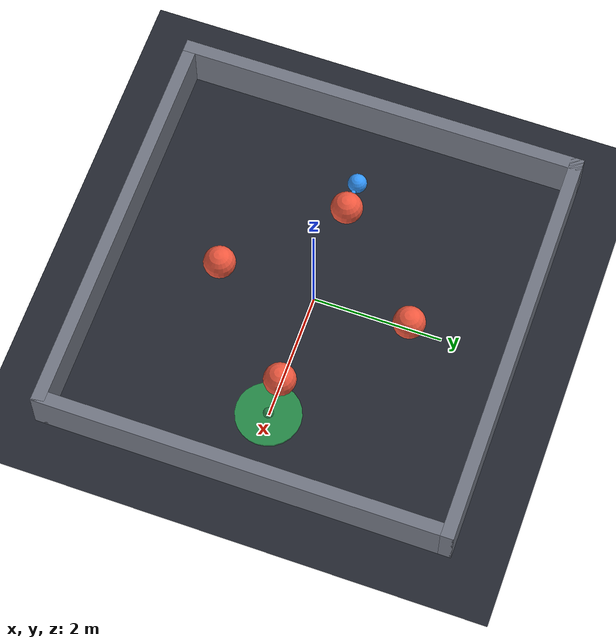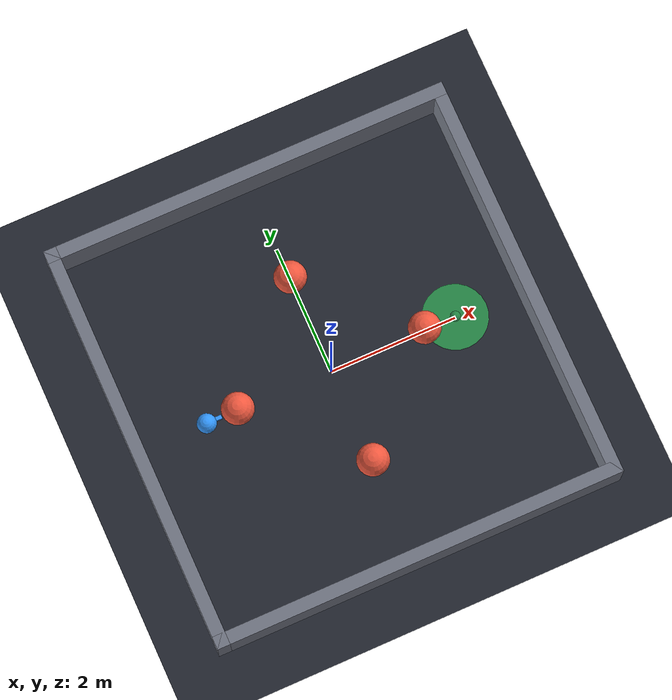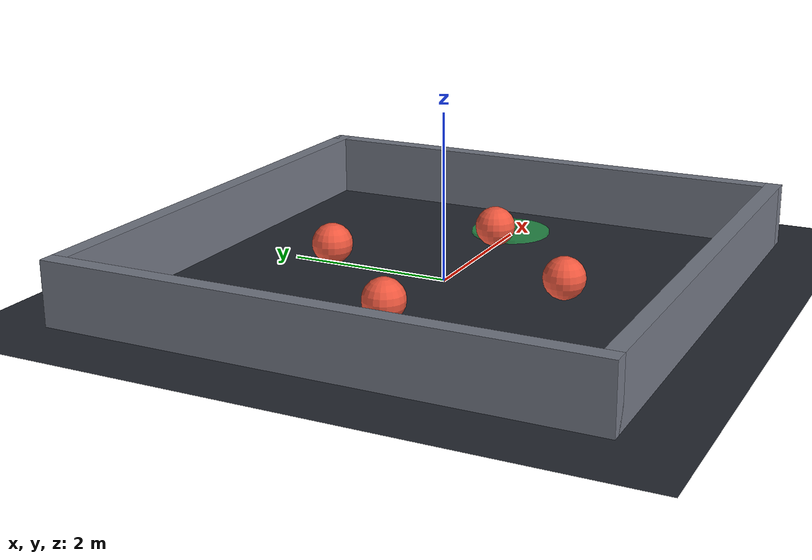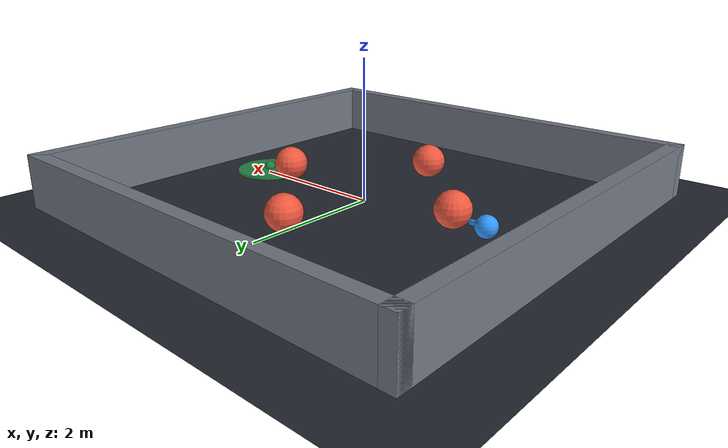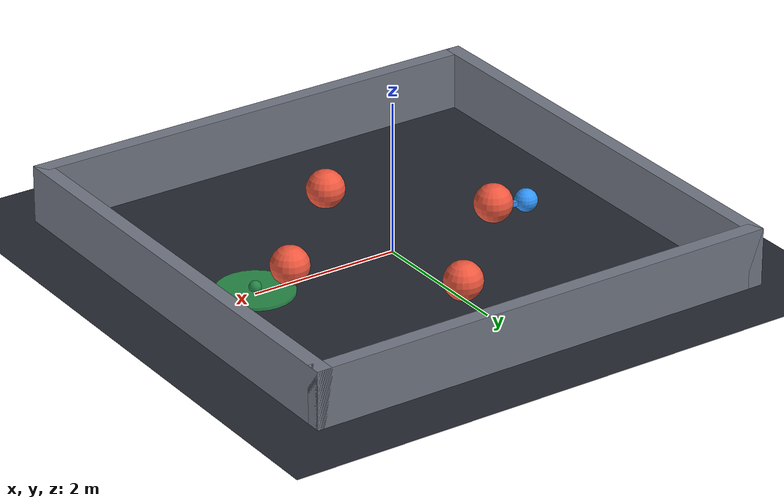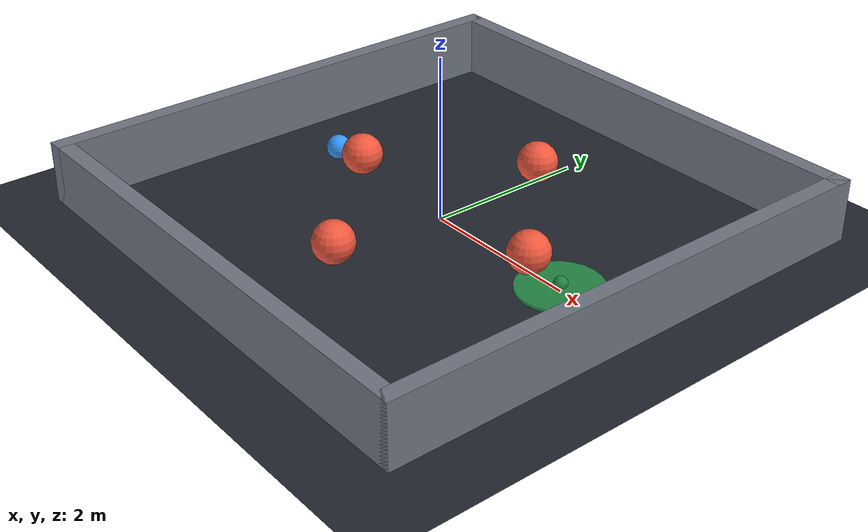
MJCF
<?xml version="1.0" encoding="utf-8"?>
<mujoco model="praxis_nav">
  <compiler angle="radian" coordinate="local" inertiafromgeom="true"/>

  <!-- sim_dt is also set from config in nav_env via mjx model timestep; this is
       the authoring default. n_substeps * timestep = ctrl_dt (~0.05). -->
  <option timestep="0.01" iterations="4" ls_iterations="6" integrator="Euler">
    <flag eulerdamp="disable"/>
  </option>

  <default>
    <geom solref="0.01 1" solimp="0.9 0.95 0.001" condim="3"/>
    <!-- agent slides: light, low friction floor handled by floor geom -->
  </default>

  <asset>
    <texture name="grid" type="2d" builtin="checker" rgb1="0.18 0.20 0.24"
             rgb2="0.10 0.11 0.14" width="300" height="300"/>
    <material name="grid_mat" texture="grid" texrepeat="6 6" reflectance="0.05"/>
    <material name="agent_mat" rgba="0.20 0.60 1.00 1"/>
    <material name="obstacle_mat" rgba="0.95 0.35 0.25 1"/>
    <material name="wall_mat" rgba="0.45 0.47 0.52 1"/>
    <material name="goal_mat" rgba="0.20 0.90 0.40 0.55"/>
  </asset>

  <worldbody>
    <light name="overhead" pos="0 0 6" dir="0 0 -1" diffuse="0.8 0.8 0.8"
           specular="0.1 0.1 0.1" castshadow="false"/>

    <!-- Floor plane (static). Sized a bit larger than the arena. -->
    <geom name="floor" type="plane" size="4 4 0.1" pos="0 0 0"
          material="grid_mat" condim="3" friction="1 0.005 0.0001"/>

    <geom name="wall_px" type="box" size="0.1 3.2 0.5" pos="3.1 0 0.25"
          material="wall_mat"/>
    <geom name="wall_nx" type="box" size="0.1 3.2 0.5" pos="-3.1 0 0.25"
          material="wall_mat"/>
    <geom name="wall_py" type="box" size="3.2 0.1 0.5" pos="0 3.1 0.25"
          material="wall_mat"/>
    <geom name="wall_ny" type="box" size="3.2 0.1 0.5" pos="0 -3.1 0.25"
          material="wall_mat"/>

    <!-- ================= AGENT ================= -->
    <!-- Two slide joints (x, y) + one yaw hinge. The agent is a low cylinder
         (radius ~0.15) sitting just above the floor. armature/damping keep the
         velocity actuators well-behaved. -->
    <body name="agent" pos="-2.0 0 0.15">
      <joint name="agent_x" type="slide" axis="1 0 0" damping="1.0" armature="0.1"/>
      <joint name="agent_y" type="slide" axis="0 1 0" damping="1.0" armature="0.1"/>
      <joint name="agent_yaw" type="hinge" axis="0 0 1" damping="0.5" armature="0.1"/>
      <geom name="agent_geom" type="sphere" size="0.15" material="agent_mat"
            mass="1.0" contype="0" conaffinity="0"/>
      <!-- A small nose so yaw is visible in the video. -->
      <geom name="agent_nose" type="box" size="0.12 0.03 0.03" pos="0.12 0 0"
            material="agent_mat" mass="0.01" contype="0" conaffinity="0"/>
      <!-- Chase camera that follows the agent for the rollout video. -->
      <camera name="track" mode="trackcom" pos="0 -4.5 4.0" xyaxes="1 0 0 0 0.7 0.7"/>
    </body>

    <!-- ================= OBSTACLES (mocap movers 0..3) ================= -->
    <body name="obstacle_0" mocap="true" pos="0.0 1.5 0.25">
      <geom name="obstacle_0_geom" type="sphere" size="0.25"
            material="obstacle_mat" condim="3"/>
    </body>
    <body name="obstacle_1" mocap="true" pos="0.0 -1.5 0.25">
      <geom name="obstacle_1_geom" type="sphere" size="0.25"
            material="obstacle_mat" condim="3"/>
    </body>
    <body name="obstacle_2" mocap="true" pos="1.5 0.0 0.25">
      <geom name="obstacle_2_geom" type="sphere" size="0.25"
            material="obstacle_mat" condim="3"/>
    </body>
    <body name="obstacle_3" mocap="true" pos="-1.5 0.0 0.25">
      <geom name="obstacle_3_geom" type="sphere" size="0.25"
            material="obstacle_mat" condim="3"/>
    </body>

    <!-- ================= GOAL MARKER (cosmetic mocap, index 4) ================= -->
    <!-- Repositioned for the rollout video to info['goal']; non-colliding. -->
    <body name="goal_marker" mocap="true" pos="2.0 0 0.05">
      <geom name="goal_marker_geom" type="cylinder" size="0.5 0.02"
            material="goal_mat" contype="0" conaffinity="0"/>
      <site name="goal" type="sphere" size="0.08" pos="0 0 0.05" material="goal_mat"/>
    </body>
  </worldbody>

  <actuator>
    <velocity name="vel_x" joint="agent_x" kv="10.0" ctrlrange="-1.5 1.5"/>
    <velocity name="vel_y" joint="agent_y" kv="10.0" ctrlrange="-1.5 1.5"/>
  </actuator>
</mujoco>
